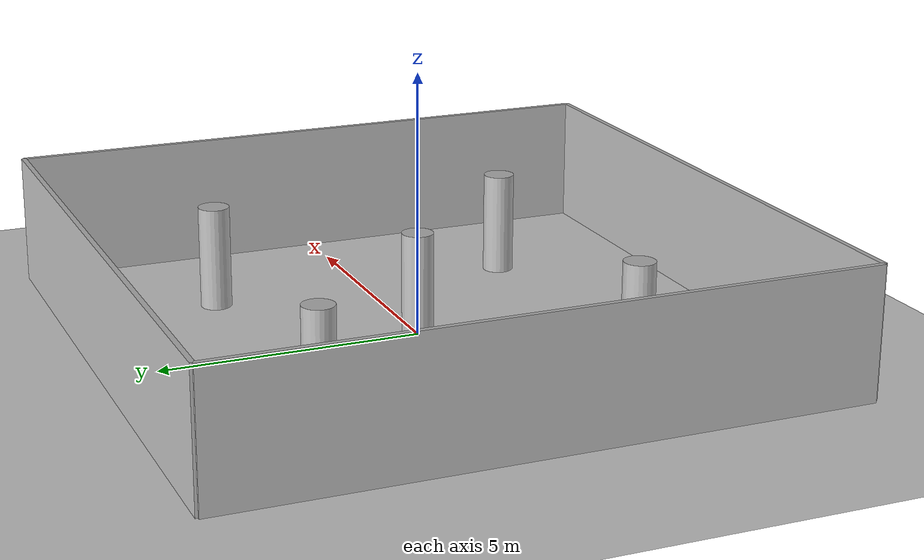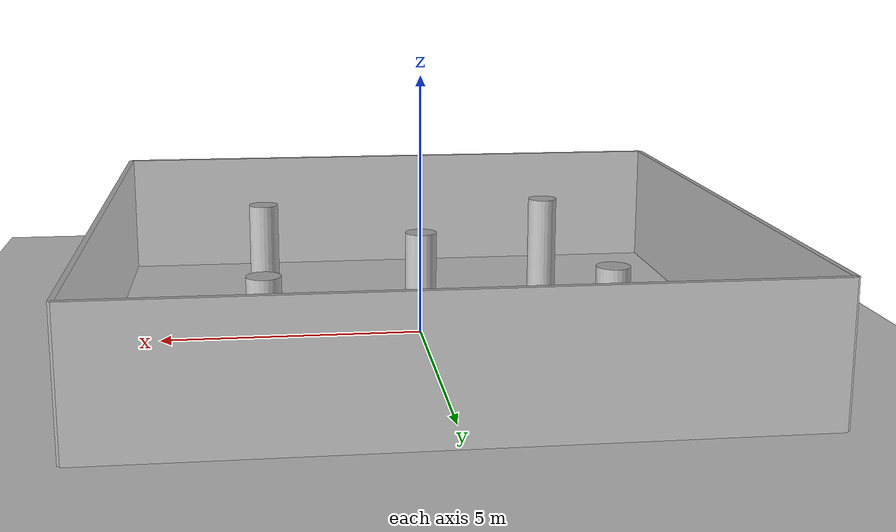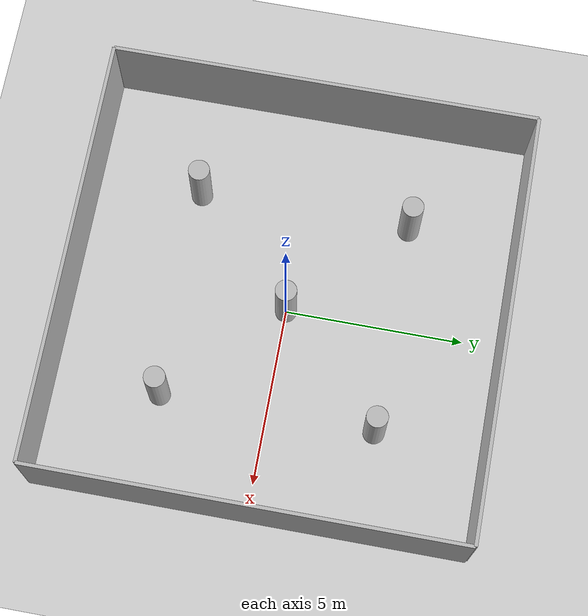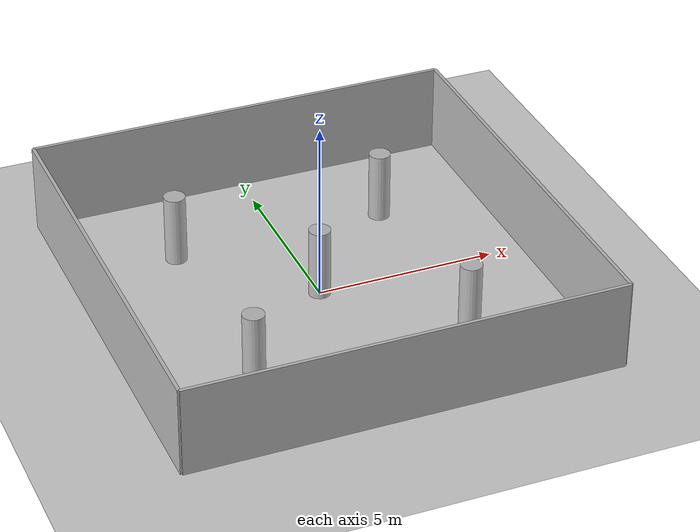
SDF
<sdf version="1.7">
  <world name="custom_obstacle_world">
    <include>
      <uri>model://ground_plane</uri>
    </include>
    <include>
      <uri>model://sun</uri>
    </include>

    <model name="wall_L1">
      <static>1</static>
      <link name="link">
        <pose>0 6 1.25 0 0 0</pose>
        <collision name="collision">
          <geometry><box><size>12 0.1 2.5</size></box></geometry>
        </collision>
        <visual name="visual">
          <geometry><box><size>12 0.1 2.5</size></box></geometry>
        </visual>
      </link>
    </model>

    <model name="wall_L2">
      <static>1</static>
      <link name="link">
        <pose>6 0 1.25 0 0 1.5708</pose>
        <collision name="collision">
          <geometry><box><size>12 0.1 2.5</size></box></geometry>
        </collision>
        <visual name="visual">
          <geometry><box><size>12 0.1 2.5</size></box></geometry>
        </visual>
      </link>
    </model>

    <model name="wall_front">
      <static>1</static>
      <link name="link">
        <pose>-6 0 1.25 0 0 1.5708</pose>
        <collision name="collision">
          <geometry><box><size>12 0.1 2.5</size></box></geometry>
        </collision>
        <visual name="visual">
          <geometry><box><size>12 0.1 2.5</size></box></geometry>
        </visual>
      </link>
    </model>

    <model name="wall_back">
      <static>1</static>
      <link name="link">
        <pose>0 -6 1.25 0 0 0</pose>
        <collision name="collision">
          <geometry><box><size>12 0.1 2.5</size></box></geometry>
        </collision>
        <visual name="visual">
          <geometry><box><size>12 0.1 2.5</size></box></geometry>
        </visual>
      </link>
    </model>

    <!-- Columna central -->
    <model name="central_column">
      <static>1</static>
      <link name="link">
        <pose>0 0 1.0 0 0 0</pose>
        <collision name="collision">
          <geometry><cylinder><radius>0.3</radius><length>2</length></cylinder></geometry>
        </collision>
        <visual name="visual">
          <geometry><cylinder><radius>0.3</radius><length>2</length></cylinder></geometry>
        </visual>
      </link>
    </model>

    <!-- Columnas adicionales, más separadas -->
    <model name="column_2">
      <static>1</static>
      <link name="link">
        <pose>-3 3 1.0 0 0 0</pose>
        <collision name="collision">
          <geometry><cylinder><radius>0.3</radius><length>2</length></cylinder></geometry>
        </collision>
        <visual name="visual">
          <geometry><cylinder><radius>0.3</radius><length>2</length></cylinder></geometry>
        </visual>
      </link>
    </model>

    <model name="column_3">
      <static>1</static>
      <link name="link">
        <pose>3 3 1.0 0 0 0</pose>
        <collision name="collision">
          <geometry><cylinder><radius>0.3</radius><length>2</length></cylinder></geometry>
        </collision>
        <visual name="visual">
          <geometry><cylinder><radius>0.3</radius><length>2</length></cylinder></geometry>
        </visual>
      </link>
    </model>

    <model name="column_4">
      <static>1</static>
      <link name="link">
        <pose>-3 -3 1.0 0 0 0</pose>
        <collision name="collision">
          <geometry><cylinder><radius>0.3</radius><length>2</length></cylinder></geometry>
        </collision>
        <visual name="visual">
          <geometry><cylinder><radius>0.3</radius><length>2</length></cylinder></geometry>
        </visual>
      </link>
    </model>

    <model name="column_5">
      <static>1</static>
      <link name="link">
        <pose>3 -3 1.0 0 0 0</pose>
        <collision name="collision">
          <geometry><cylinder><radius>0.3</radius><length>2</length></cylinder></geometry>
        </collision>
        <visual name="visual">
          <geometry><cylinder><radius>0.3</radius><length>2</length></cylinder></geometry>
        </visual>
      </link>
    </model>

  </world>
</sdf>
